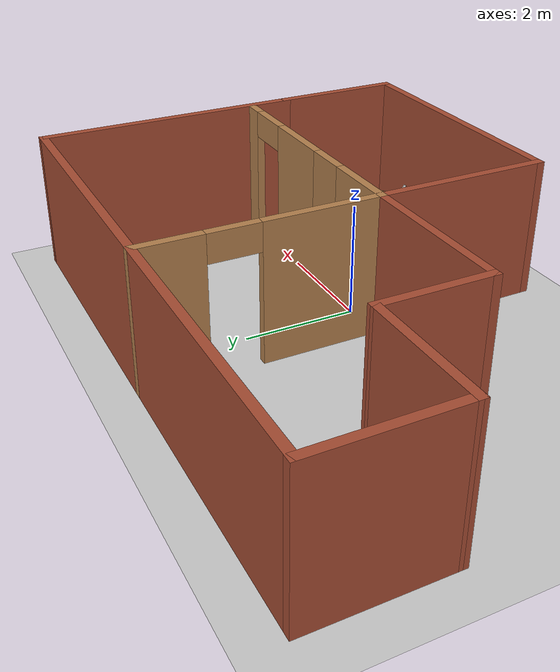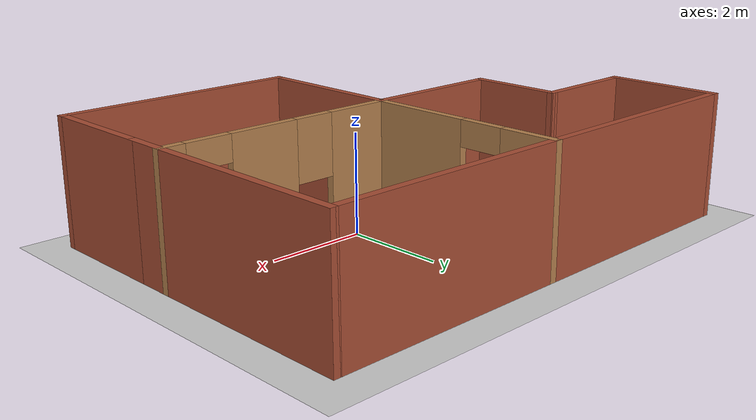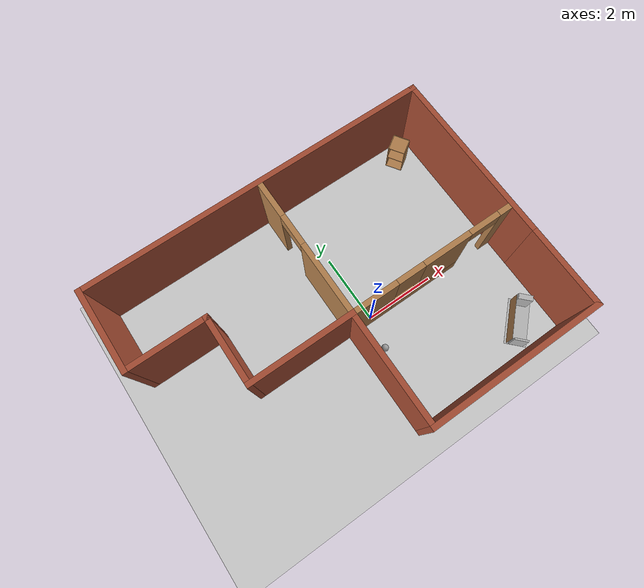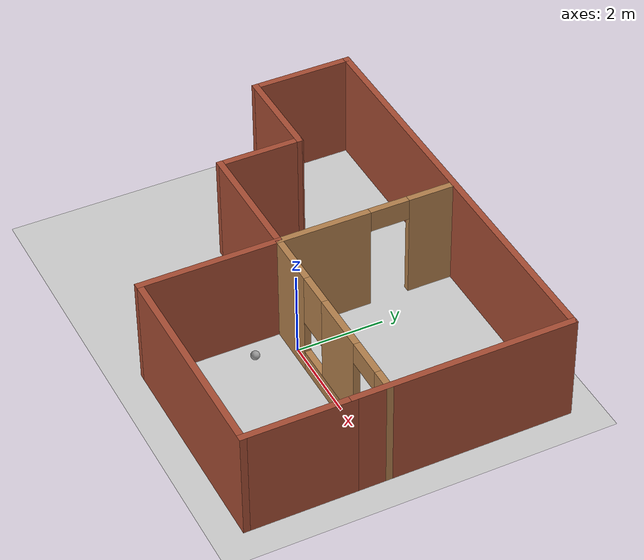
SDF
<sdf version="1.6">
 <world name="__default__">
  <plugin name="hello" filename="libhello.so"/>
  <gravity>0 0 -9.8</gravity>
  <magnetic_field>6e-06 2.3e-05 -4.2e-05</magnetic_field>
  <atmosphere type="adiabatic"/>
  <physics name="default_physics" default="0" type="ode">
   <max_step_size>0.001</max_step_size>
   <real_time_factor>1</real_time_factor>
   <real_time_update_rate>1000</real_time_update_rate>
  </physics>
  <scene><ambient>0.4 0.4 0.4 1</ambient><background>0.7 0.7 0.7 1</background><shadows>1</shadows></scene>
  <spherical_coordinates>
   <surface_model>EARTH_WGS84</surface_model>
   <latitude_deg>0</latitude_deg>
   <longitude_deg>0</longitude_deg>
   <elevation>0</elevation>
   <heading_deg>0</heading_deg>
  </spherical_coordinates>
  <model name="mybuilding">
   <pose>-0.78249 0.44973 0 0 -0 0</pose>
   <link name="Wall_10">
    <collision name="Wall_10_Collision">
     <geometry><box><size>2.30025 0.15 2.5</size></box></geometry>
     <pose>0 0 1.25 0 -0 0</pose>
    </collision>
    <visual name="Wall_10_Visual">
     <pose>0 0 1.25 0 -0 0</pose>
     <geometry><box><size>2.30025 0.15 2.5</size></box></geometry>
     <material>
      <script><uri>file://media/materials/scripts/gazebo.material</uri><name>Gazebo/Bricks</name></script>
      <ambient>1 1 1 1</ambient>
     </material>
     <meta><layer>0</layer></meta>
    </visual>
    <pose>-3.84999 1.34978 0 0 0 -3.14139</pose>
   </link>
   <link name="Wall_11">
    <collision name="Wall_11_Collision">
     <geometry><box><size>2.40056 0.15 2.5</size></box></geometry>
     <pose>0 0 1.25 0 -0 0</pose>
    </collision>
    <visual name="Wall_11_Visual">
     <pose>0 0 1.25 0 -0 0</pose>
     <geometry><box><size>2.40056 0.15 2.5</size></box></geometry>
     <material>
      <script><uri>file://media/materials/scripts/gazebo.material</uri><name>Gazebo/Bricks</name></script>
      <ambient>1 1 1 1</ambient>
     </material>
     <meta><layer>0</layer></meta>
    </visual>
    <pose>-4.92512 2.47456 0 0 -0 1.5708</pose>
   </link>
   <link name="Wall_13">
    <pose>2.50013 -0.500002 0 0 -0 0</pose>
    <visual name="Wall_13_Visual_0">
     <pose>-1.80816 0 1.25 0 -0 0</pose>
     <geometry><box><size>1.38368 0.15 2.5</size></box></geometry>
     <material>
      <script><uri>file://media/materials/scripts/gazebo.material</uri><name>Gazebo/Wood</name></script>
      <ambient>1 1 1 1</ambient>
     </material>
     <meta><layer>0</layer></meta>
    </visual>
    <collision name="Wall_13_Collision_0">
     <geometry><box><size>1.38368 0.15 2.5</size></box></geometry>
     <pose>-1.80816 0 1.25 0 -0 0</pose>
    </collision>
    <visual name="Wall_13_Visual_1">
     <pose>2.24096 0 1.25 0 -0 0</pose>
     <geometry><box><size>0.518074 0.15 2.5</size></box></geometry>
     <material>
      <script><uri>file://media/materials/scripts/gazebo.material</uri><name>Gazebo/Wood</name></script>
      <ambient>1 1 1 1</ambient>
     </material>
     <meta><layer>0</layer></meta>
    </visual>
    <collision name="Wall_13_Collision_1">
     <geometry><box><size>0.518074 0.15 2.5</size></box></geometry>
     <pose>2.24096 0 1.25 0 -0 0</pose>
    </collision>
    <visual name="Wall_13_Visual_2">
     <pose>-0.017199 0 0.25 0 -0 0</pose>
     <geometry><box><size>2.19825 0.15 0.5</size></box></geometry>
     <material>
      <script><uri>file://media/materials/scripts/gazebo.material</uri><name>Gazebo/Wood</name></script>
      <ambient>1 1 1 1</ambient>
     </material>
     <meta><layer>0</layer></meta>
    </visual>
    <collision name="Wall_13_Collision_2">
     <geometry><box><size>2.19825 0.15 0.5</size></box></geometry>
     <pose>-0.017199 0 0.25 0 -0 0</pose>
    </collision>
    <visual name="Wall_13_Visual_3">
     <pose>0.382801 0 1.5 0 -0 0</pose>
     <geometry><box><size>1.39825 0.15 2</size></box></geometry>
     <material>
      <script><uri>file://media/materials/scripts/gazebo.material</uri><name>Gazebo/Wood</name></script>
      <ambient>1 1 1 1</ambient>
     </material>
     <meta><layer>0</layer></meta>
    </visual>
    <collision name="Wall_13_Collision_3">
     <geometry><box><size>1.39825 0.15 2</size></box></geometry>
     <pose>0.382801 0 1.5 0 -0 0</pose>
    </collision>
    <visual name="Wall_13_Visual_4">
     <pose>-0.716324 0 1.9 0 -0 0</pose>
     <geometry><box><size>0.8 0.15 1.2</size></box></geometry>
     <material>
      <script><uri>file://media/materials/scripts/gazebo.material</uri><name>Gazebo/Wood</name></script>
      <ambient>1 1 1 1</ambient>
     </material>
     <meta><layer>0</layer></meta>
    </visual>
    <collision name="Wall_13_Collision_4">
     <geometry><box><size>0.8 0.15 1.2</size></box></geometry>
     <pose>-0.716324 0 1.9 0 -0 0</pose>
    </collision>
    <visual name="Wall_13_Visual_5">
     <pose>1.53193 0 2.25 0 -0 0</pose>
     <geometry><box><size>0.9 0.15 0.5</size></box></geometry>
     <material>
      <script><uri>file://media/materials/scripts/gazebo.material</uri><name>Gazebo/Wood</name></script>
      <ambient>1 1 1 1</ambient>
     </material>
     <meta><layer>0</layer></meta>
    </visual>
    <collision name="Wall_13_Collision_5">
     <geometry><box><size>0.9 0.15 0.5</size></box></geometry>
     <pose>1.53193 0 2.25 0 -0 0</pose>
    </collision>
   </link>
   <link name="Wall_15">
    <pose>0.075133 1.55 0 0 -0 1.5708</pose>
    <visual name="Wall_15_Visual_0">
     <pose>-1.04383 0 1.25 0 -0 0</pose>
     <geometry><box><size>2.16234 0.15 2.5</size></box></geometry>
     <material>
      <script><uri>file://media/materials/scripts/gazebo.material</uri><name>Gazebo/Wood</name></script>
      <ambient>1 1 1 1</ambient>
     </material>
     <meta><layer>0</layer></meta>
    </visual>
    <collision name="Wall_15_Collision_0">
     <geometry><box><size>2.16234 0.15 2.5</size></box></geometry>
     <pose>-1.04383 0 1.25 0 -0 0</pose>
    </collision>
    <visual name="Wall_15_Visual_1">
     <pose>1.53117 0 1.25 0 -0 0</pose>
     <geometry><box><size>1.18766 0.15 2.5</size></box></geometry>
     <material>
      <script><uri>file://media/materials/scripts/gazebo.material</uri><name>Gazebo/Wood</name></script>
      <ambient>1 1 1 1</ambient>
     </material>
     <meta><layer>0</layer></meta>
    </visual>
    <collision name="Wall_15_Collision_1">
     <geometry><box><size>1.18766 0.15 2.5</size></box></geometry>
     <pose>1.53117 0 1.25 0 -0 0</pose>
    </collision>
    <visual name="Wall_15_Visual_2">
     <pose>0.487335 0 2.25 0 -0 0</pose>
     <geometry><box><size>0.9 0.15 0.5</size></box></geometry>
     <material>
      <script><uri>file://media/materials/scripts/gazebo.material</uri><name>Gazebo/Wood</name></script>
      <ambient>1 1 1 1</ambient>
     </material>
     <meta><layer>0</layer></meta>
    </visual>
    <collision name="Wall_15_Collision_2">
     <geometry><box><size>0.9 0.15 0.5</size></box></geometry>
     <pose>0.487335 0 2.25 0 -0 0</pose>
    </collision>
   </link>
   <link name="Wall_3">
    <collision name="Wall_3_Collision">
     <geometry><box><size>10 0.15 2.5</size></box></geometry>
     <pose>0 0 1.25 0 -0 0</pose>
    </collision>
    <visual name="Wall_3_Visual">
     <pose>0 0 1.25 0 -0 0</pose>
     <geometry><box><size>10 0.15 2.5</size></box></geometry>
     <material>
      <script><uri>file://media/materials/scripts/gazebo.material</uri><name>Gazebo/Bricks</name></script>
      <ambient>1 1 1 1</ambient>
     </material>
     <meta><layer>0</layer></meta>
    </visual>
    <pose>8e-06 3.59978 0 0 -0 4.5e-05</pose>
   </link>
   <link name="Wall_4">
    <collision name="Wall_4_Collision">
     <geometry><box><size>5 0.15 2.5</size></box></geometry>
     <pose>0 0 1.25 0 -0 0</pose>
    </collision>
    <visual name="Wall_4_Visual">
     <pose>0 0 1.25 0 -0 0</pose>
     <geometry><box><size>5 0.15 2.5</size></box></geometry>
     <material>
      <script><uri>file://media/materials/scripts/gazebo.material</uri><name>Gazebo/Bricks</name></script>
      <ambient>1 1 1 1</ambient>
     </material>
     <meta><layer>0</layer></meta>
    </visual>
    <pose>4.92513 1.175 0 0 0 -1.5708</pose>
   </link>
   <link name="Wall_5">
    <collision name="Wall_5_Collision">
     <geometry><box><size>2.5 0.15 2.5</size></box></geometry>
     <pose>0 0 1.25 0 -0 0</pose>
    </collision>
    <visual name="Wall_5_Visual">
     <pose>0 0 1.25 0 -0 0</pose>
     <geometry><box><size>2.5 0.15 2.5</size></box></geometry>
     <material>
      <script><uri>file://media/materials/scripts/gazebo.material</uri><name>Gazebo/Bricks</name></script>
      <ambient>1 1 1 1</ambient>
     </material>
     <meta><layer>0</layer></meta>
    </visual>
    <pose>4.92513 -2.425 0 0 0 -1.5708</pose>
   </link>
   <link name="Wall_6">
    <collision name="Wall_6_Collision">
     <geometry><box><size>5 0.15 2.5</size></box></geometry>
     <pose>0 0 1.25 0 -0 0</pose>
    </collision>
    <visual name="Wall_6_Visual">
     <pose>0 0 1.25 0 -0 0</pose>
     <geometry><box><size>5 0.15 2.5</size></box></geometry>
     <material>
      <script><uri>file://media/materials/scripts/gazebo.material</uri><name>Gazebo/Bricks</name></script>
      <ambient>1 1 1 1</ambient>
     </material>
     <meta><layer>0</layer></meta>
    </visual>
    <pose>2.50013 -3.6 0 0 -0 3.14159</pose>
   </link>
   <link name="Wall_7">
    <collision name="Wall_7_Collision">
     <geometry><box><size>3.25 0.15 2.5</size></box></geometry>
     <pose>0 0 1.25 0 -0 0</pose>
    </collision>
    <visual name="Wall_7_Visual">
     <pose>0 0 1.25 0 -0 0</pose>
     <geometry><box><size>3.25 0.15 2.5</size></box></geometry>
     <material>
      <script><uri>file://media/materials/scripts/gazebo.material</uri><name>Gazebo/Bricks</name></script>
      <ambient>1 1 1 1</ambient>
     </material>
     <meta><layer>0</layer></meta>
    </visual>
    <pose>0.075133 -2.05 0 0 -0 1.5708</pose>
   </link>
   <link name="Wall_8">
    <collision name="Wall_8_Collision">
     <geometry><box><size>3 0.15 2.5</size></box></geometry>
     <pose>0 0 1.25 0 -0 0</pose>
    </collision>
    <visual name="Wall_8_Visual">
     <pose>0 0 1.25 0 -0 0</pose>
     <geometry><box><size>3 0.15 2.5</size></box></geometry>
     <material>
      <script><uri>file://media/materials/scripts/gazebo.material</uri><name>Gazebo/Bricks</name></script>
      <ambient>1 1 1 1</ambient>
     </material>
     <meta><layer>0</layer></meta>
    </visual>
    <pose>-1.34987 -0.500002 0 0 -0 3.14159</pose>
   </link>
   <link name="Wall_9">
    <collision name="Wall_9_Collision">
     <geometry><box><size>2 0.15 2.5</size></box></geometry>
     <pose>0 0 1.25 0 -0 0</pose>
    </collision>
    <visual name="Wall_9_Visual">
     <pose>0 0 1.25 0 -0 0</pose>
     <geometry><box><size>2 0.15 2.5</size></box></geometry>
     <material>
      <script><uri>file://media/materials/scripts/gazebo.material</uri><name>Gazebo/Bricks</name></script>
      <ambient>1 1 1 1</ambient>
     </material>
     <meta><layer>0</layer></meta>
    </visual>
    <pose>-2.77487 0.424998 0 0 -0 1.5708</pose>
   </link>
   <static>1</static>
  </model>
  <model name="ground_plane">
   <static>1</static>
   <link name="link">
    <collision name="collision">
     <geometry><plane><normal>0 0 1</normal><size>100 100</size></plane></geometry>
     <surface>
      <contact><collide_bitmask>65535</collide_bitmask></contact>
      <friction><ode><mu>100</mu><mu2>50</mu2></ode></friction>
     </surface>
    </collision>
    <visual name="visual">
     <cast_shadows>0</cast_shadows>
     <geometry><plane><normal>0 0 1</normal><size>100 100</size></plane></geometry>
     <material>
      <script><uri>file://media/materials/scripts/gazebo.material</uri><name>Gazebo/Grey</name></script>
     </material>
    </visual>
   </link>
   <pose>6.29071 0.786283 0 0 -0 0</pose>
  </model>
  <light name="user_directional_light_0" type="directional">
   <pose>-3.91448 -3.66042 1 0 -0 0</pose>
   <diffuse>0.5 0.5 0.5 1</diffuse>
   <specular>0.1 0.1 0.1 1</specular>
   <direction>0.1 0.1 -0.9</direction>
   <attenuation>
    <range>20</range>
    <constant>0.5</constant>
    <linear>0.01</linear>
    <quadratic>0.001</quadratic>
   </attenuation>
  </light>
  <model name="my_ball">
   <link name="link_0">
    <inertial>
     <mass>1</mass>
     <inertia><ixx>0.1</ixx><ixy>0</ixy><ixz>0</ixz><iyy>0.1</iyy><iyz>0</iyz><izz>0.1</izz></inertia>
    </inertial>
    <visual name="visual">
     <geometry><sphere><radius>0.1</radius></sphere></geometry>
     <material>
      <lighting>1</lighting>
      <script><uri>file://media/materials/scripts/gazebo.material</uri><name>Gazebo/Grey</name></script>
      <shader type="pixel"><normal_map>__default__</normal_map></shader>
      <ambient>1 1 1 1</ambient>
      <diffuse>1 1 1 1</diffuse>
      <specular>1 1 1 1</specular>
      <emissive>1 1 1 1</emissive>
     </material>
    </visual>
    <collision name="collision">
     <geometry><sphere><radius>0.1</radius></sphere></geometry>
     <surface>
      <friction>
       <ode><mu>1</mu><mu2>1</mu2><fdir1>0 0 0</fdir1><slip1>0</slip1><slip2>0</slip2></ode>
       <torsional>
        <coefficient>1</coefficient>
        <patch_radius>0</patch_radius>
        <surface_radius>0</surface_radius>
        <use_patch_radius>1</use_patch_radius>
        <ode><slip>0</slip></ode>
       </torsional>
      </friction>
      <bounce><restitution_coefficient>0</restitution_coefficient><threshold>1e+06</threshold></bounce>
      <contact>
       <collide_without_contact>0</collide_without_contact>
       <collide_without_contact_bitmask>1</collide_without_contact_bitmask>
       <collide_bitmask>1</collide_bitmask>
       <ode>
        <soft_cfm>0</soft_cfm>
        <soft_erp>0.2</soft_erp>
        <kp>1e+13</kp>
        <kd>1</kd>
        <max_vel>0.01</max_vel>
        <min_depth>0</min_depth>
       </ode>
       <bullet>
        <split_impulse>1</split_impulse>
        <split_impulse_penetration_threshold>-0.01</split_impulse_penetration_threshold>
        <soft_cfm>0</soft_cfm>
        <soft_erp>0.2</soft_erp>
        <kp>1e+13</kp>
        <kd>1</kd>
       </bullet>
      </contact>
     </surface>
    </collision>
   </link>
   <static>0</static>
   <pose>-0.167411 -0.9031 0.1 0 -0 0</pose>
  </model>
  <model name="cabinet">
   <static>1</static>
   <link name="cabinet_bottom_plate">
    <inertial>
     <pose>0 0 -1 0 -0 0</pose>
     <inertia><ixx>2.05</ixx><ixy>0</ixy><ixz>0</ixz><iyy>2.05</iyy><iyz>0</iyz><izz>2.05</izz></inertia>
     <mass>25</mass>
    </inertial>
    <collision name="cabinet_bottom_plate_geom">
     <pose>0 0 0.01 0 -0 0</pose>
     <geometry><box><size>0.45 0.45 0.02</size></box></geometry>
    </collision>
    <visual name="cabinet_bottom_plate_geom_visual">
     <pose>0 0 0.01 0 -0 0</pose>
     <geometry><box><size>0.45 0.45 0.02</size></box></geometry>
     <material>
      <script><uri>file://media/materials/scripts/gazebo.material</uri><name>Gazebo/Wood</name></script>
     </material>
    </visual>
    <collision name="cabinet_bottom_plate_geom_cabinet_back_plate">
     <pose>0.235 0 0.51 0 -0 0</pose>
     <geometry><box><size>0.02 0.45 1.02</size></box></geometry>
    </collision>
    <visual name="cabinet_bottom_plate_geom_cabinet_back_plate_visual">
     <pose>0.235 0 0.51 0 -0 0</pose>
     <geometry><box><size>0.02 0.45 1.02</size></box></geometry>
     <material>
      <script><uri>file://media/materials/scripts/gazebo.material</uri><name>Gazebo/Wood</name></script>
     </material>
    </visual>
    <collision name="cabinet_bottom_plate_geom_cabinet_left_plate">
     <pose>0 0.235 0.51 0 -0 0</pose>
     <geometry><box><size>0.45 0.02 1.02</size></box></geometry>
    </collision>
    <visual name="cabinet_bottom_plate_geom_cabinet_left_plate_visual">
     <pose>0 0.235 0.51 0 -0 0</pose>
     <geometry><box><size>0.45 0.02 1.02</size></box></geometry>
     <material>
      <script><uri>file://media/materials/scripts/gazebo.material</uri><name>Gazebo/Wood</name></script>
     </material>
    </visual>
    <collision name="cabinet_bottom_plate_geom_cabinet_middle_plate">
     <pose>0 0 0.51 0 -0 0</pose>
     <geometry><box><size>0.45 0.45 0.02</size></box></geometry>
    </collision>
    <visual name="cabinet_bottom_plate_geom_cabinet_middle_plate_visual">
     <pose>0 0 0.51 0 -0 0</pose>
     <geometry><box><size>0.45 0.45 0.02</size></box></geometry>
     <material>
      <script><uri>file://media/materials/scripts/gazebo.material</uri><name>Gazebo/Wood</name></script>
     </material>
    </visual>
    <collision name="cabinet_bottom_plate_geom_cabinet_right_plate">
     <pose>0 -0.235 0.51 0 -0 0</pose>
     <geometry><box><size>0.45 0.02 1.02</size></box></geometry>
    </collision>
    <visual name="cabinet_bottom_plate_geom_cabinet_right_plate_visual">
     <pose>0 -0.235 0.51 0 -0 0</pose>
     <geometry><box><size>0.45 0.02 1.02</size></box></geometry>
     <material>
      <script><uri>file://media/materials/scripts/gazebo.material</uri><name>Gazebo/Wood</name></script>
     </material>
    </visual>
    <collision name="cabinet_bottom_plate_geom_cabinet_top_plate">
     <pose>0 0 1.01 0 -0 0</pose>
     <geometry><box><size>0.45 0.45 0.02</size></box></geometry>
    </collision>
    <visual name="cabinet_bottom_plate_geom_cabinet_top_plate_visual">
     <pose>0 0 1.01 0 -0 0</pose>
     <geometry><box><size>0.45 0.45 0.02</size></box></geometry>
     <material>
      <script><uri>file://media/materials/scripts/gazebo.material</uri><name>Gazebo/Wood</name></script>
     </material>
    </visual>
   </link>
   <pose>3.44892 3.47472 0 0 -0 0.586906</pose>
  </model>
  <model name="frc2016_sallyport">
   <link name="base">
    <inertial>
     <mass>50</mass>
     <pose>0 0 0.35406 0 -0 0</pose>
     <inertia><ixx>0.727808</ixx><ixy>0</ixy><ixz>0</ixz><iyy>1.77488</iyy><iyz>0</iyz><izz>1.64109</izz></inertia>
    </inertial>
    <visual name="platform">
     <pose>0 0 0.06974 0 -0 0</pose>
     <geometry><box><size>1.27 0.5969 0.003175</size></box></geometry>
    </visual>
    <collision name="platform">
     <pose>0 0 0.06974 0 -0 0</pose>
     <geometry><box><size>1.27 0.5969 0.003175</size></box></geometry>
    </collision>
    <visual name="left_column">
     <pose>-0.5588 0.00318 0.38876 0 -0 0</pose>
     <geometry><box><size>0.1524 0.38735 0.635</size></box></geometry>
    </visual>
    <collision name="left_column">
     <pose>-0.5588 0.00318 0.38876 0 -0 0</pose>
     <geometry><box><size>0.1524 0.38735 0.635</size></box></geometry>
    </collision>
    <visual name="right_column">
     <pose>0.6096 0.00635 0.38876 0 -0 0</pose>
     <geometry><box><size>0.0508 0.381 0.635</size></box></geometry>
    </visual>
    <collision name="right_column">
     <pose>0.6096 0.00635 0.38876 0 -0 0</pose>
     <geometry><box><size>0.0508 0.381 0.635</size></box></geometry>
    </collision>
    <visual name="castor1">
     <pose>-0.45886 0.15389 0.03487 0 -0 0</pose>
     <geometry><sphere><radius>0.03487</radius></sphere></geometry>
    </visual>
    <collision name="castor1">
     <pose>-0.45886 0.15389 0.03487 0 -0 0</pose>
     <geometry><sphere><radius>0.03487</radius></sphere></geometry>
    </collision>
    <visual name="castor2">
     <pose>-0.28117 -0.22559 0.03487 0 -0 0</pose>
     <geometry><sphere><radius>0.03487</radius></sphere></geometry>
    </visual>
    <collision name="castor2">
     <pose>-0.28117 -0.22559 0.03487 0 -0 0</pose>
     <geometry><sphere><radius>0.03487</radius></sphere></geometry>
    </collision>
    <visual name="castor3">
     <pose>0.27933 -0.2272 0.03487 0 -0 0</pose>
     <geometry><sphere><radius>0.03487</radius></sphere></geometry>
    </visual>
    <collision name="castor3">
     <pose>0.27933 -0.2272 0.03487 0 -0 0</pose>
     <geometry><sphere><radius>0.03487</radius></sphere></geometry>
    </collision>
    <visual name="castor4">
     <pose>0.4571 0.15424 0.03487 0 -0 0</pose>
     <geometry><sphere><radius>0.03487</radius></sphere></geometry>
    </visual>
    <collision name="castor4">
     <pose>0.4571 0.15424 0.03487 0 -0 0</pose>
     <geometry><sphere><radius>0.03487</radius></sphere></geometry>
    </collision>
   </link>
   <link name="door">
    <pose>0.02255 -0.24321 0.40332 0 -0 0</pose>
    <inertial>
     <pose>0 0 0 -1.5707 0 0</pose>
     <mass>2</mass>
     <inertia>
      <ixx>0.0619421</ixx>
      <ixy>0</ixy>
      <ixz>0</ixz>
      <iyy>0.246462</iyy>
      <iyz>0</iyz>
      <izz>0.30839</izz>
     </inertia>
    </inertial>
    <visual name="visual">
     <geometry><box><size>1.21603 0.00635 0.6096</size></box></geometry>
     <material><script><name>Gazebo/WoodFloor</name><uri>__default__</uri></script></material>
    </visual>
    <collision name="collision"><geometry><box><size>1.21603 0.00635 0.6096</size></box></geometry></collision>
   </link>
   <joint name="door_joint" type="revolute">
    <pose>-0.608015 0 0 0 -0 0</pose>
    <parent>base</parent>
    <child>door</child>
    <axis>
     <xyz>0 0 1</xyz>
     <limit><lower>-3.1415</lower><upper>0</upper></limit>
     <use_parent_model_frame>0</use_parent_model_frame>
     <dynamics><spring_reference>0</spring_reference><spring_stiffness>0</spring_stiffness></dynamics>
    </axis>
   </joint>
   <pose>3.20811 -2.39462 0 -1e-06 1e-06 -2.37301</pose>
  </model>
 </world>
</sdf>
